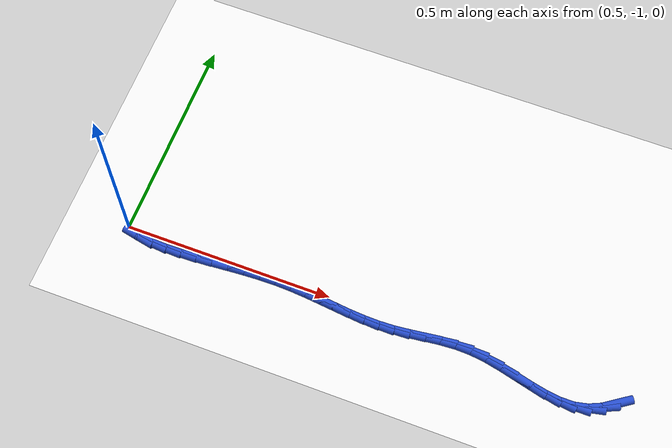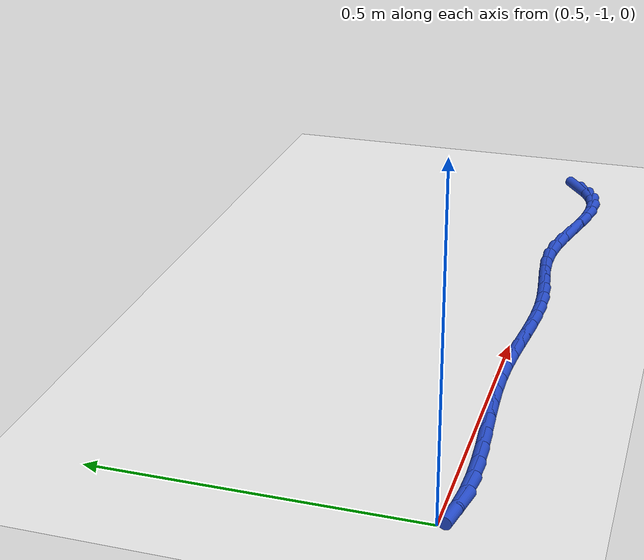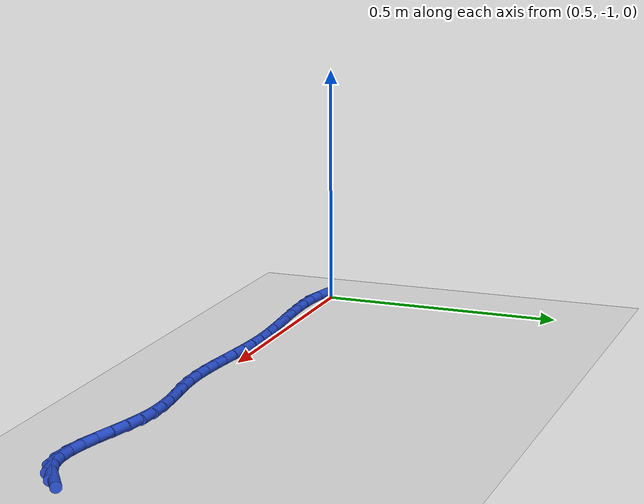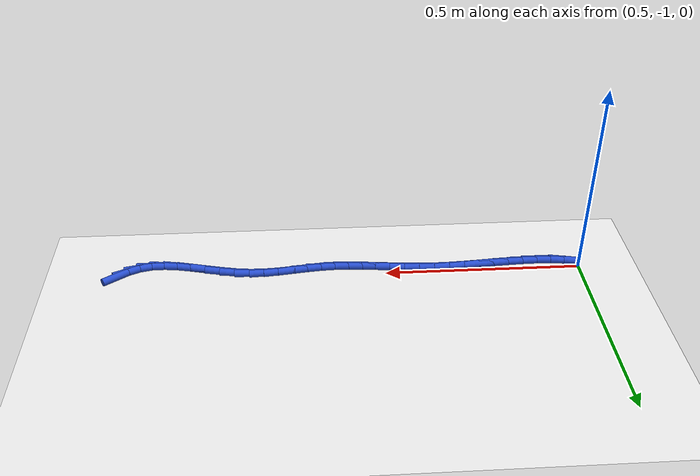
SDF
<sdf version="1.6">
 <world name="default">
  <model name="ground_plane">
   <static>1</static>
   <link name="link">
    <collision name="collision">
     <geometry><plane><normal>0 0 1</normal><size>100 100</size></plane></geometry>
     <surface><friction><ode><mu>100</mu><mu2>50</mu2></ode></friction></surface>
    </collision>
    <visual name="visual">
     <cast_shadows>0</cast_shadows>
     <geometry><plane><normal>0 0 1</normal><size>100 100</size></plane></geometry>
     <material>
      <script><uri>file://media/materials/scripts/gazebo.material</uri><name>Gazebo/WhiteGlow</name></script>
     </material>
    </visual>
   </link>
  </model>
  <model name="line">
   <link name="link_135">
    <pose>1.6842233435202874 -1.0152988764642648 0.01 0 1.57 0.6093618181956695</pose>
    <collision name="collision">
     <geometry><cylinder><radius>0.01</radius><length>0.08</length></cylinder></geometry>
    </collision>
    <visual name="visual">
     <material>
      <script><name>Gazebo/Blue</name><uri>file://media/materials/scripts/gazebo.material</uri></script>
     </material>
     <geometry><cylinder><radius>0.01</radius><length>0.08</length></cylinder></geometry>
    </visual>
   </link>
   <link name="link_136">
    <pose>1.6582221195441478 -1.0334469341214556 0.01 0 1.57 0.4255899857916766</pose>
    <collision name="collision">
     <geometry><cylinder><radius>0.01</radius><length>0.08</length></cylinder></geometry>
    </collision>
    <visual name="visual">
     <material>
      <script><name>Gazebo/Blue</name><uri>file://media/materials/scripts/gazebo.material</uri></script>
     </material>
     <geometry><cylinder><radius>0.01</radius><length>0.08</length></cylinder></geometry>
    </visual>
   </link>
   <link name="link_137">
    <pose>1.6301927880184568 -1.0461524668546685 0.01 0 1.57 0.21571949367078366</pose>
    <collision name="collision">
     <geometry><cylinder><radius>0.01</radius><length>0.08</length></cylinder></geometry>
    </collision>
    <visual name="visual">
     <material>
      <script><name>Gazebo/Blue</name><uri>file://media/materials/scripts/gazebo.material</uri></script>
     </material>
     <geometry><cylinder><radius>0.01</radius><length>0.08</length></cylinder></geometry>
    </visual>
   </link>
   <link name="link_138">
    <pose>1.5999354624896933 -1.052782728467629 0.01 0 1.57 0.01677697726784366</pose>
    <collision name="collision">
     <geometry><cylinder><radius>0.01</radius><length>0.08</length></cylinder></geometry>
    </collision>
    <visual name="visual">
     <material>
      <script><name>Gazebo/Blue</name><uri>file://media/materials/scripts/gazebo.material</uri></script>
     </material>
     <geometry><cylinder><radius>0.01</radius><length>0.08</length></cylinder></geometry>
    </visual>
   </link>
   <link name="link_139">
    <pose>1.5674261115715997 -1.0533281882862413 0.01 0 1.57 -0.12111477156894396</pose>
    <collision name="collision">
     <geometry><cylinder><radius>0.01</radius><length>0.08</length></cylinder></geometry>
    </collision>
    <visual name="visual">
     <material>
      <script><name>Gazebo/Blue</name><uri>file://media/materials/scripts/gazebo.material</uri></script>
     </material>
     <geometry><cylinder><radius>0.01</radius><length>0.08</length></cylinder></geometry>
    </visual>
   </link>
   <link name="link_140">
    <pose>1.533024995376738 -1.0491412122870574 0.01 0 1.57 -0.2030367082084519</pose>
    <collision name="collision">
     <geometry><cylinder><radius>0.01</radius><length>0.08</length></cylinder></geometry>
    </collision>
    <visual name="visual">
     <material>
      <script><name>Gazebo/Blue</name><uri>file://media/materials/scripts/gazebo.material</uri></script>
     </material>
     <geometry><cylinder><radius>0.01</radius><length>0.08</length></cylinder></geometry>
    </visual>
   </link>
   <link name="link_141">
    <pose>1.49714314387373 -1.0417540905332412 0.01 0 1.57 -0.2403144011348357</pose>
    <collision name="collision">
     <geometry><cylinder><radius>0.01</radius><length>0.08</length></cylinder></geometry>
    </collision>
    <visual name="visual">
     <material>
      <script><name>Gazebo/Blue</name><uri>file://media/materials/scripts/gazebo.material</uri></script>
     </material>
     <geometry><cylinder><radius>0.01</radius><length>0.08</length></cylinder></geometry>
    </visual>
   </link>
   <link name="link_142">
    <pose>1.4601915870311932 -1.032699113087956 0.01 0 1.57 -0.2396661020730949</pose>
    <collision name="collision">
     <geometry><cylinder><radius>0.01</radius><length>0.08</length></cylinder></geometry>
    </collision>
    <visual name="visual">
     <material>
      <script><name>Gazebo/Blue</name><uri>file://media/materials/scripts/gazebo.material</uri></script>
     </material>
     <geometry><cylinder><radius>0.01</radius><length>0.08</length></cylinder></geometry>
    </visual>
   </link>
   <link name="link_143">
    <pose>1.4225813548177493 -1.0235085700143658 0.01 0 1.57 -0.2030338068689514</pose>
    <collision name="collision">
     <geometry><cylinder><radius>0.01</radius><length>0.08</length></cylinder></geometry>
    </collision>
    <visual name="visual">
     <material>
      <script><name>Gazebo/Blue</name><uri>file://media/materials/scripts/gazebo.material</uri></script>
     </material>
     <geometry><cylinder><radius>0.01</radius><length>0.08</length></cylinder></geometry>
    </visual>
   </link>
   <link name="link_144">
    <pose>1.3847234772020183 -1.0157147513756344 0.01 0 1.57 -0.12834928531545112</pose>
    <collision name="collision">
     <geometry><cylinder><radius>0.01</radius><length>0.08</length></cylinder></geometry>
    </collision>
    <visual name="visual">
     <material>
      <script><name>Gazebo/Blue</name><uri>file://media/materials/scripts/gazebo.material</uri></script>
     </material>
     <geometry><cylinder><radius>0.01</radius><length>0.08</length></cylinder></geometry>
    </visual>
   </link>
   <link name="link_145">
    <pose>1.3470289841526186 -1.0108499472349246 0.01 0 1.57 -0.021349383835712374</pose>
    <collision name="collision">
     <geometry><cylinder><radius>0.01</radius><length>0.08</length></cylinder></geometry>
    </collision>
    <visual name="visual">
     <material>
      <script><name>Gazebo/Blue</name><uri>file://media/materials/scripts/gazebo.material</uri></script>
     </material>
     <geometry><cylinder><radius>0.01</radius><length>0.08</length></cylinder></geometry>
    </visual>
   </link>
   <link name="link_146">
    <pose>1.3098410287650137 -1.0100558866543607 0.01 0 1.57 0.06716317247893816</pose>
    <collision name="collision">
     <geometry><cylinder><radius>0.01</radius><length>0.08</length></cylinder></geometry>
    </collision>
    <visual name="visual">
     <material>
      <script><name>Gazebo/Blue</name><uri>file://media/materials/scripts/gazebo.material</uri></script>
     </material>
     <geometry><cylinder><radius>0.01</radius><length>0.08</length></cylinder></geometry>
    </visual>
   </link>
   <link name="link_147">
    <pose>1.2731636358917038 -1.0125229674121037 0.01 0 1.57 0.11829316941553564</pose>
    <collision name="collision">
     <geometry><cylinder><radius>0.01</radius><length>0.08</length></cylinder></geometry>
    </collision>
    <visual name="visual">
     <material>
      <script><name>Gazebo/Blue</name><uri>file://media/materials/scripts/gazebo.material</uri></script>
     </material>
     <geometry><cylinder><radius>0.01</radius><length>0.08</length></cylinder></geometry>
    </visual>
   </link>
   <link name="link_148">
    <pose>1.236895132933423 -1.0168334080840498 0.01 0 1.57 0.130938593418549</pose>
    <collision name="collision">
     <geometry><cylinder><radius>0.01</radius><length>0.08</length></cylinder></geometry>
    </collision>
    <visual name="visual">
     <material>
      <script><name>Gazebo/Blue</name><uri>file://media/materials/scripts/gazebo.material</uri></script>
     </material>
     <geometry><cylinder><radius>0.01</radius><length>0.08</length></cylinder></geometry>
    </visual>
   </link>
   <link name="link_149">
    <pose>1.2009338128069111 -1.0215692288264746 0.01 0 1.57 0.10430841324527593</pose>
    <collision name="collision">
     <geometry><cylinder><radius>0.01</radius><length>0.08</length></cylinder></geometry>
    </collision>
    <visual name="visual">
     <material>
      <script><name>Gazebo/Blue</name><uri>file://media/materials/scripts/gazebo.material</uri></script>
     </material>
     <geometry><cylinder><radius>0.01</radius><length>0.08</length></cylinder></geometry>
    </visual>
   </link>
   <link name="link_150">
    <pose>1.1651779684289065 -1.0253124497956518 0.01 0 1.57 0.041966932654609566</pose>
    <collision name="collision">
     <geometry><cylinder><radius>0.01</radius><length>0.08</length></cylinder></geometry>
    </collision>
    <visual name="visual">
     <material>
      <script><name>Gazebo/Blue</name><uri>file://media/materials/scripts/gazebo.material</uri></script>
     </material>
     <geometry><cylinder><radius>0.01</radius><length>0.08</length></cylinder></geometry>
    </visual>
   </link>
   <link name="link_151">
    <pose>1.1295255239935125 -1.0268095525442746 0.01 0 1.57 -0.020467906027271214</pose>
    <collision name="collision">
     <geometry><cylinder><radius>0.01</radius><length>0.08</length></cylinder></geometry>
    </collision>
    <visual name="visual">
     <material>
      <script><name>Gazebo/Blue</name><uri>file://media/materials/scripts/gazebo.material</uri></script>
     </material>
     <geometry><cylinder><radius>0.01</radius><length>0.08</length></cylinder></geometry>
    </visual>
   </link>
   <link name="link_152">
    <pose>1.0938715503676801 -1.0260796884378394 0.01 0 1.57 -0.06545371766908706</pose>
    <collision name="collision">
     <geometry><cylinder><radius>0.01</radius><length>0.08</length></cylinder></geometry>
    </collision>
    <visual name="visual">
     <material>
      <script><name>Gazebo/Blue</name><uri>file://media/materials/scripts/gazebo.material</uri></script>
     </material>
     <geometry><cylinder><radius>0.01</radius><length>0.08</length></cylinder></geometry>
    </visual>
   </link>
   <link name="link_153">
    <pose>1.0581097875870984 -1.0237355996503814 0.01 0 1.57 -0.09263642386943842</pose>
    <collision name="collision">
     <geometry><cylinder><radius>0.01</radius><length>0.08</length></cylinder></geometry>
    </collision>
    <visual name="visual">
     <material>
      <script><name>Gazebo/Blue</name><uri>file://media/materials/scripts/gazebo.material</uri></script>
     </material>
     <geometry><cylinder><radius>0.01</radius><length>0.08</length></cylinder></geometry>
    </visual>
   </link>
   <link name="link_154">
    <pose>1.0221339682124229 -1.02039336244636 0.01 0 1.57 -0.10225110371812635</pose>
    <collision name="collision">
     <geometry><cylinder><radius>0.01</radius><length>0.08</length></cylinder></geometry>
    </collision>
    <visual name="visual">
     <material>
      <script><name>Gazebo/Blue</name><uri>file://media/materials/scripts/gazebo.material</uri></script>
     </material>
     <geometry><cylinder><radius>0.01</radius><length>0.08</length></cylinder></geometry>
    </visual>
   </link>
   <link name="link_155">
    <pose>0.9858378248043088 -1.0166690530902347 0.01 0 1.57 -0.09476015188650469</pose>
    <collision name="collision">
     <geometry><cylinder><radius>0.01</radius><length>0.08</length></cylinder></geometry>
    </collision>
    <visual name="visual">
     <material>
      <script><name>Gazebo/Blue</name><uri>file://media/materials/scripts/gazebo.material</uri></script>
     </material>
     <geometry><cylinder><radius>0.01</radius><length>0.08</length></cylinder></geometry>
    </visual>
   </link>
   <link name="link_156">
    <pose>0.9491150899234109 -1.0131787478464647 0.01 0 1.57 -0.07074959511045857</pose>
    <collision name="collision">
     <geometry><cylinder><radius>0.01</radius><length>0.08</length></cylinder></geometry>
    </collision>
    <visual name="visual">
     <material>
      <script><name>Gazebo/Blue</name><uri>file://media/materials/scripts/gazebo.material</uri></script>
     </material>
     <geometry><cylinder><radius>0.01</radius><length>0.08</length></cylinder></geometry>
    </visual>
   </link>
   <link name="link_157">
    <pose>0.9118594961303845 -1.0105385229795096 0.01 0 1.57 -0.030997825758575168</pose>
    <collision name="collision">
     <geometry><cylinder><radius>0.01</radius><length>0.08</length></cylinder></geometry>
    </collision>
    <visual name="visual">
     <material>
      <script><name>Gazebo/Blue</name><uri>file://media/materials/scripts/gazebo.material</uri></script>
     </material>
     <geometry><cylinder><radius>0.01</radius><length>0.08</length></cylinder></geometry>
    </visual>
   </link>
   <link name="link_158">
    <pose>0.8739650787488998 -1.0093635020626155 0.01 0 1.57 0.015590191111367382</pose>
    <collision name="collision">
     <geometry><cylinder><radius>0.01</radius><length>0.08</length></cylinder></geometry>
    </collision>
    <visual name="visual">
     <material>
      <script><name>Gazebo/Blue</name><uri>file://media/materials/scripts/gazebo.material</uri></script>
     </material>
     <geometry><cylinder><radius>0.01</radius><length>0.08</length></cylinder></geometry>
    </visual>
   </link>
   <link name="link_159">
    <pose>0.8354226022317002 -1.0099644353246358 0.01 0 1.57 0.04999341224085008</pose>
    <collision name="collision">
     <geometry><cylinder><radius>0.01</radius><length>0.08</length></cylinder></geometry>
    </collision>
    <visual name="visual">
     <material>
      <script><name>Gazebo/Blue</name><uri>file://media/materials/scripts/gazebo.material</uri></script>
     </material>
     <geometry><cylinder><radius>0.01</radius><length>0.08</length></cylinder></geometry>
    </visual>
   </link>
   <link name="link_160">
    <pose>0.7964573682704685 -1.0119140648630116 0.01 0 1.57 0.07045677883882652</pose>
    <collision name="collision">
     <geometry><cylinder><radius>0.01</radius><length>0.08</length></cylinder></geometry>
    </collision>
    <visual name="visual">
     <material>
      <script><name>Gazebo/Blue</name><uri>file://media/materials/scripts/gazebo.material</uri></script>
     </material>
     <geometry><cylinder><radius>0.01</radius><length>0.08</length></cylinder></geometry>
    </visual>
   </link>
   <link name="link_161">
    <pose>0.7573295332841397 -1.0146754569205259 0.01 0 1.57 0.0776350675632407</pose>
    <collision name="collision">
     <geometry><cylinder><radius>0.01</radius><length>0.08</length></cylinder></geometry>
    </collision>
    <visual name="visual">
     <material>
      <script><name>Gazebo/Blue</name><uri>file://media/materials/scripts/gazebo.material</uri></script>
     </material>
     <geometry><cylinder><radius>0.01</radius><length>0.08</length></cylinder></geometry>
    </visual>
   </link>
   <link name="link_162">
    <pose>0.7182992536916478 -1.0177116777399626 0.01 0 1.57 0.07161076645120767</pose>
    <collision name="collision">
     <geometry><cylinder><radius>0.01</radius><length>0.08</length></cylinder></geometry>
    </collision>
    <visual name="visual">
     <material>
      <script><name>Gazebo/Blue</name><uri>file://media/materials/scripts/gazebo.material</uri></script>
     </material>
     <geometry><cylinder><radius>0.01</radius><length>0.08</length></cylinder></geometry>
    </visual>
   </link>
   <link name="link_163">
    <pose>0.6796266859119278 -1.020485793564105 0.01 0 1.57 0.051854475921484955</pose>
    <collision name="collision">
     <geometry><cylinder><radius>0.01</radius><length>0.08</length></cylinder></geometry>
    </collision>
    <visual name="visual">
     <material>
      <script><name>Gazebo/Blue</name><uri>file://media/materials/scripts/gazebo.material</uri></script>
     </material>
     <geometry><cylinder><radius>0.01</radius><length>0.08</length></cylinder></geometry>
    </visual>
   </link>
   <link name="link_164">
    <pose>0.641571986363914 -1.0224608706357374 0.01 0 1.57 0.017189316055576675</pose>
    <collision name="collision">
     <geometry><cylinder><radius>0.01</radius><length>0.08</length></cylinder></geometry>
    </collision>
    <visual name="visual">
     <material>
      <script><name>Gazebo/Blue</name><uri>file://media/materials/scripts/gazebo.material</uri></script>
     </material>
     <geometry><cylinder><radius>0.01</radius><length>0.08</length></cylinder></geometry>
    </visual>
   </link>
   <link name="link_165">
    <pose>0.6043953114665408 -1.023099975197643 0.01 0 1.57 -0.03422229606217251</pose>
    <collision name="collision">
     <geometry><cylinder><radius>0.01</radius><length>0.08</length></cylinder></geometry>
    </collision>
    <visual name="visual">
     <material>
      <script><name>Gazebo/Blue</name><uri>file://media/materials/scripts/gazebo.material</uri></script>
     </material>
     <geometry><cylinder><radius>0.01</radius><length>0.08</length></cylinder></geometry>
    </visual>
   </link>
   <link name="link_166">
    <pose>0.5683568176387429 -1.0218661734926056 0.01 0 1.57 -0.1048001188275648</pose>
    <collision name="collision">
     <geometry><cylinder><radius>0.01</radius><length>0.08</length></cylinder></geometry>
    </collision>
    <visual name="visual">
     <material>
      <script><name>Gazebo/Blue</name><uri>file://media/materials/scripts/gazebo.material</uri></script>
     </material>
     <geometry><cylinder><radius>0.01</radius><length>0.08</length></cylinder></geometry>
    </visual>
   </link>
   <link name="link_167">
    <pose>0.5337166612994556 -1.0182225317634088 0.01 0 1.57 -0.19722305198880907</pose>
    <collision name="collision">
     <geometry><cylinder><radius>0.01</radius><length>0.08</length></cylinder></geometry>
    </collision>
    <visual name="visual">
     <material>
      <script><name>Gazebo/Blue</name><uri>file://media/materials/scripts/gazebo.material</uri></script>
     </material>
     <geometry><cylinder><radius>0.01</radius><length>0.08</length></cylinder></geometry>
    </visual>
   </link>
  </model>
 </world>
</sdf>
